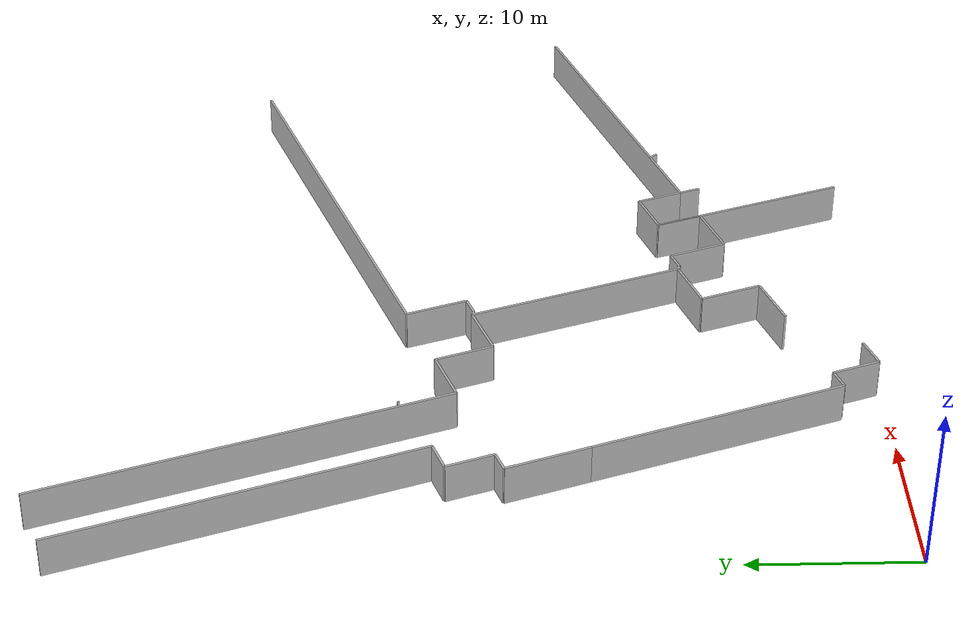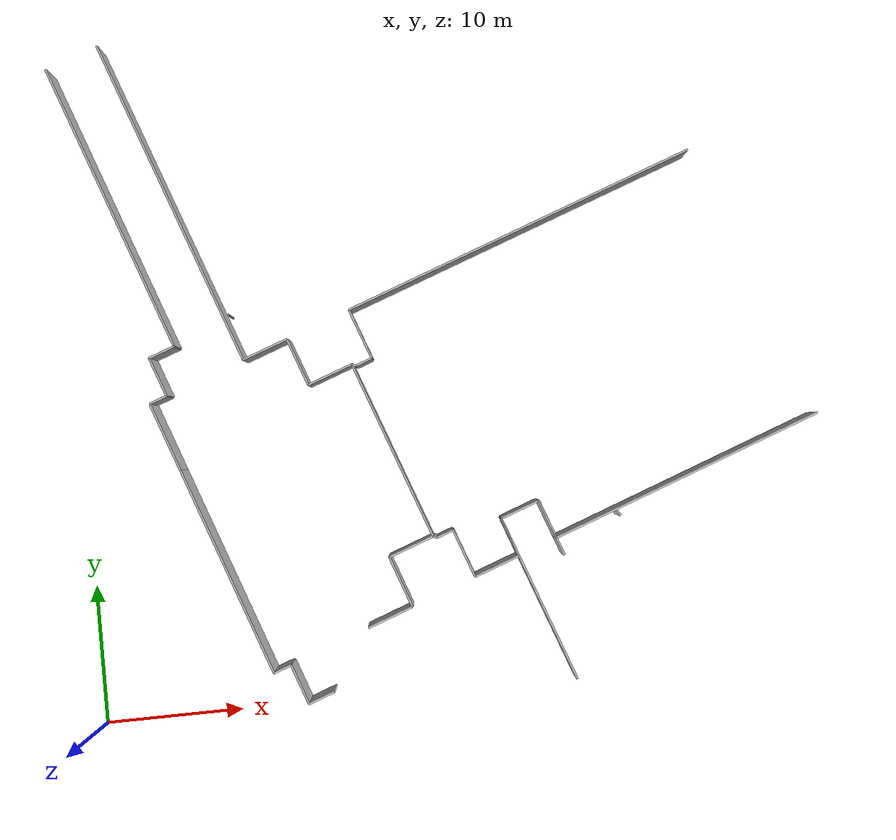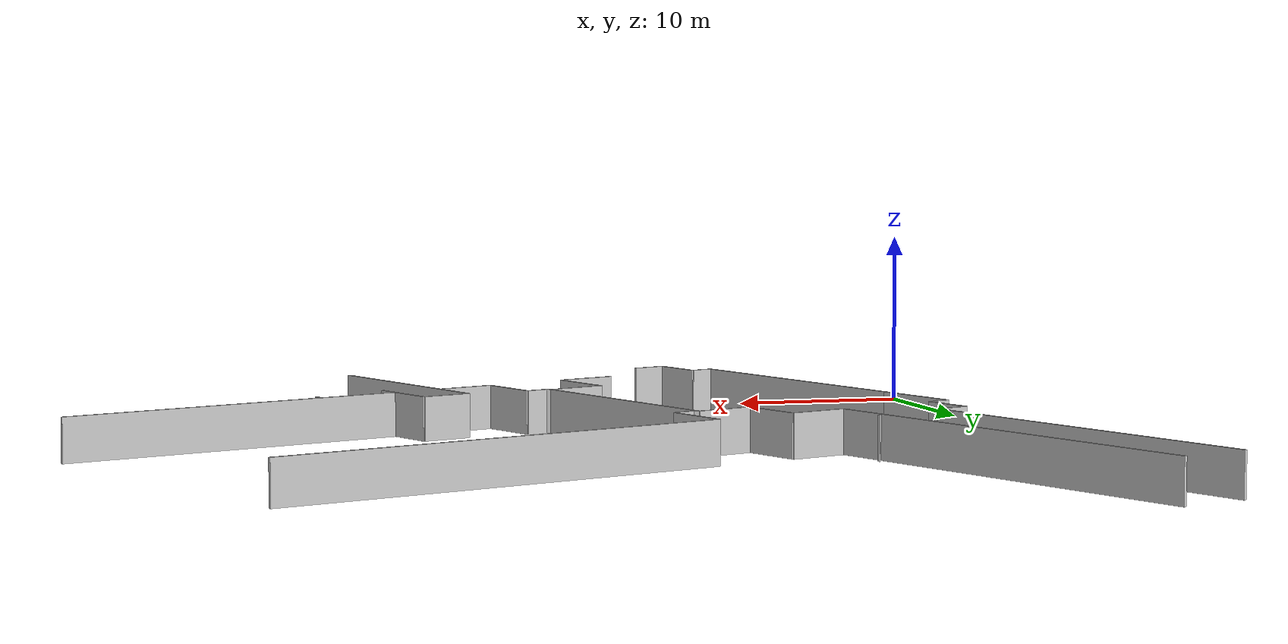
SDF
<?xml version="1.0" ?>
<sdf version="1.6">
  <model name="sps_4532">
    <pose frame="">0 0 0 0 -0 0</pose>
    <static>1</static>
    <self_collide>0</self_collide>
    <allow_auto_disable>0</allow_auto_disable>
    <link name="Wall75">
      <kinematic>0</kinematic>
      <gravity>1</gravity>
      <self_collide>0</self_collide>
      <collision name="collision">
        <geometry>
          <box>
            <size>3.50995 0.15 2.5</size>
          </box>
        </geometry>
        <pose frame="">0 0 0 0 -0 0</pose>
      </collision>
      <visual name="visual">
        <geometry>
          <box>
            <size>3.50995 0.15 2.5</size>
          </box>
        </geometry>
        <pose frame="">0 0 0 0 -0 0</pose>
        <cast_shadows>1</cast_shadows>
        <transparency>0.0</transparency>
      </visual>
      <pose frame="">14.3138 26.0264 1.25 0 -0 0.344249</pose>
    </link>
    <link name="Wall76">
      <kinematic>0</kinematic>
      <gravity>1</gravity>
      <self_collide>0</self_collide>
      <collision name="collision">
        <geometry>
          <box>
            <size>3.50986 0.15 2.5</size>
          </box>
        </geometry>
        <pose frame="">0 0 0 0 -0 0</pose>
      </collision>
      <visual name="visual">
        <geometry>
          <box>
            <size>3.50986 0.15 2.5</size>
          </box>
        </geometry>
        <pose frame="">0 0 0 0 -0 0</pose>
        <cast_shadows>1</cast_shadows>
        <transparency>0.0</transparency>
      </visual>
      <pose frame="">21.5362 5.88191 1.25 0 0 -2.79726</pose>
    </link>
    <link name="Wall77">
      <kinematic>0</kinematic>
      <gravity>1</gravity>
      <self_collide>0</self_collide>
      <collision name="collision">
        <geometry>
          <box>
            <size>3.92009 0.15 2.5</size>
          </box>
        </geometry>
        <pose frame="">0 0 0 0 -0 0</pose>
      </collision>
      <visual name="visual">
        <geometry>
          <box>
            <size>3.92009 0.15 2.5</size>
          </box>
        </geometry>
        <pose frame="">0 0 0 0 -0 0</pose>
        <cast_shadows>1</cast_shadows>
        <transparency>0.0</transparency>
      </visual>
      <pose frame="">22.5265 8.31932 1.25 0 0 -1.22648</pose>
    </link>
    <link name="Wall78">
      <kinematic>0</kinematic>
      <gravity>1</gravity>
      <self_collide>0</self_collide>
      <collision name="collision">
        <geometry>
          <box>
            <size>4.30404 0.15 2.5</size>
          </box>
        </geometry>
        <pose frame="">0 0 0 0 -0 0</pose>
      </collision>
      <visual name="visual">
        <geometry>
          <box>
            <size>4.30404 0.15 2.5</size>
          </box>
        </geometry>
        <pose frame="">0 0 0 0 -0 0</pose>
        <cast_shadows>1</cast_shadows>
        <transparency>0.0</transparency>
      </visual>
      <pose frame="">33.7432 11.1054 1.25 0 0 -1.22655</pose>
    </link>
    <link name="Wall147">
      <kinematic>0</kinematic>
      <gravity>1</gravity>
      <self_collide>0</self_collide>
      <collision name="collision">
        <geometry>
          <box>
            <size>16.0744 0.15 2.5</size>
          </box>
        </geometry>
        <pose frame="">0 0 0 0 -0 0</pose>
      </collision>
      <visual name="visual">
        <geometry>
          <box>
            <size>16.0744 0.15 2.5</size>
          </box>
        </geometry>
        <pose frame="">0 0 0 0 -0 0</pose>
        <cast_shadows>1</cast_shadows>
        <transparency>0.0</transparency>
      </visual>
      <pose frame="">10.1209 10.3274 1.25 0 -0 1.91503</pose>
    </link>
    <link name="Wall148">
      <kinematic>0</kinematic>
      <gravity>1</gravity>
      <self_collide>0</self_collide>
      <collision name="collision">
        <geometry>
          <box>
            <size>5.32562 0.15 2.5</size>
          </box>
        </geometry>
        <pose frame="">0 0 0 0 -0 0</pose>
      </collision>
      <visual name="visual">
        <geometry>
          <box>
            <size>5.32562 0.15 2.5</size>
          </box>
        </geometry>
        <pose frame="">0 0 0 0 -0 0</pose>
        <cast_shadows>1</cast_shadows>
        <transparency>0.0</transparency>
      </visual>
      <pose frame="">6.50987 20.3997 1.25 0 -0 1.91503</pose>
    </link>
    <link name="Wall149">
      <kinematic>0</kinematic>
      <gravity>1</gravity>
      <self_collide>0</self_collide>
      <collision name="collision">
        <geometry>
          <box>
            <size>3.69961 0.15 2.5</size>
          </box>
        </geometry>
        <pose frame="">0 0 0 0 -0 0</pose>
      </collision>
      <visual name="visual">
        <geometry>
          <box>
            <size>3.69961 0.15 2.5</size>
          </box>
        </geometry>
        <pose frame="">0 0 0 0 -0 0</pose>
        <cast_shadows>1</cast_shadows>
        <transparency>0.0</transparency>
      </visual>
      <pose frame="">16.5901 24.8774 1.25 0 0 -1.22654</pose>
    </link>
    <link name="Wall150">
      <kinematic>0</kinematic>
      <gravity>1</gravity>
      <self_collide>0</self_collide>
      <collision name="collision">
        <geometry>
          <box>
            <size>3.50029 0.15 2.5</size>
          </box>
        </geometry>
        <pose frame="">0 0 0 0 -0 0</pose>
      </collision>
      <visual name="visual">
        <geometry>
          <box>
            <size>3.50029 0.15 2.5</size>
          </box>
        </geometry>
        <pose frame="">0 0 0 0 -0 0</pose>
        <cast_shadows>1</cast_shadows>
        <transparency>0.0</transparency>
      </visual>
      <pose frame="">18.862 23.7266 1.25 0 -0 0.344145</pose>
    </link>
    <link name="Wall151">
      <kinematic>0</kinematic>
      <gravity>1</gravity>
      <self_collide>0</self_collide>
      <collision name="collision">
        <geometry>
          <box>
            <size>0.310551 0.15 2.5</size>
          </box>
        </geometry>
        <pose frame="">0 0 0 0 -0 0</pose>
      </collision>
      <visual name="visual">
        <geometry>
          <box>
            <size>0.310551 0.15 2.5</size>
          </box>
        </geometry>
        <pose frame="">0 0 0 0 -0 0</pose>
        <cast_shadows>1</cast_shadows>
        <transparency>0.0</transparency>
      </visual>
      <pose frame="">25.2999 11.2784 1.25 0 -0 2.70185</pose>
    </link>
    <link name="Wall152">
      <kinematic>0</kinematic>
      <gravity>1</gravity>
      <self_collide>0</self_collide>
      <collision name="collision">
        <geometry>
          <box>
            <size>3.70068 0.15 2.5</size>
          </box>
        </geometry>
        <pose frame="">0 0 0 0 -0 0</pose>
      </collision>
      <visual name="visual">
        <geometry>
          <box>
            <size>3.70068 0.15 2.5</size>
          </box>
        </geometry>
        <pose frame="">0 0 0 0 -0 0</pose>
        <cast_shadows>1</cast_shadows>
        <transparency>0.0</transparency>
      </visual>
      <pose frame="">27.27 9.90242 1.25 0 -0 1.91517</pose>
    </link>
    <link name="Wall257">
      <kinematic>0</kinematic>
      <gravity>1</gravity>
      <self_collide>0</self_collide>
      <collision name="collision">
        <geometry>
          <box>
            <size>1.34945 0.15 2.5</size>
          </box>
        </geometry>
        <pose frame="">0 0 0 0 -0 0</pose>
      </collision>
      <visual name="visual">
        <geometry>
          <box>
            <size>1.34945 0.15 2.5</size>
          </box>
        </geometry>
        <pose frame="">0 0 0 0 -0 0</pose>
        <cast_shadows>1</cast_shadows>
        <transparency>0.0</transparency>
      </visual>
      <pose frame="">6.24633 23.1341 1.25 0 -0 0.344408</pose>
    </link>
    <link name="Wall258">
      <kinematic>0</kinematic>
      <gravity>1</gravity>
      <self_collide>0</self_collide>
      <collision name="collision">
        <geometry>
          <box>
            <size>1.34956 0.15 2.5</size>
          </box>
        </geometry>
        <pose frame="">0 0 0 0 -0 0</pose>
      </collision>
      <visual name="visual">
        <geometry>
          <box>
            <size>1.34956 0.15 2.5</size>
          </box>
        </geometry>
        <pose frame="">0 0 0 0 -0 0</pose>
        <cast_shadows>1</cast_shadows>
        <transparency>0.0</transparency>
      </visual>
      <pose frame="">13.4685 2.98939 1.25 0 0 -2.79736</pose>
    </link>
    <link name="Wall319">
      <kinematic>0</kinematic>
      <gravity>1</gravity>
      <self_collide>0</self_collide>
      <collision name="collision">
        <geometry>
          <box>
            <size>0.311482 0.15 2.5</size>
          </box>
        </geometry>
        <pose frame="">0 0 0 0 -0 0</pose>
      </collision>
      <visual name="visual">
        <geometry>
          <box>
            <size>0.311482 0.15 2.5</size>
          </box>
        </geometry>
        <pose frame="">0 0 0 0 -0 0</pose>
        <cast_shadows>1</cast_shadows>
        <transparency>0.0</transparency>
      </visual>
      <pose frame="">20.6502 24.2503 1.25 0 0 -0.443316</pose>
    </link>
    <link name="Wall320">
      <kinematic>0</kinematic>
      <gravity>1</gravity>
      <self_collide>0</self_collide>
      <collision name="collision">
        <geometry>
          <box>
            <size>1.27988 0.15 2.5</size>
          </box>
        </geometry>
        <pose frame="">0 0 0 0 -0 0</pose>
      </collision>
      <visual name="visual">
        <geometry>
          <box>
            <size>1.27988 0.15 2.5</size>
          </box>
        </geometry>
        <pose frame="">0 0 0 0 -0 0</pose>
        <cast_shadows>1</cast_shadows>
        <transparency>0.0</transparency>
      </visual>
      <pose frame="">26.0429 11.4282 1.25 0 0 -2.79745</pose>
    </link>
    <link name="Wall384">
      <kinematic>0</kinematic>
      <gravity>1</gravity>
      <self_collide>0</self_collide>
      <collision name="collision">
        <geometry>
          <box>
            <size>25.7532 0.15 2.5</size>
          </box>
        </geometry>
        <pose frame="">0 0 0 0 -0 0</pose>
      </collision>
      <visual name="visual">
        <geometry>
          <box>
            <size>25.7532 0.15 2.5</size>
          </box>
        </geometry>
        <pose frame="">0 0 0 0 -0 0</pose>
        <cast_shadows>1</cast_shadows>
        <transparency>0.0</transparency>
      </visual>
      <pose frame="">8.31744 37.5557 1.25 0 -0 1.91494</pose>
    </link>
    <link name="Wall385">
      <kinematic>0</kinematic>
      <gravity>1</gravity>
      <self_collide>0</self_collide>
      <collision name="collision">
        <geometry>
          <box>
            <size>3.05064 0.15 2.5</size>
          </box>
        </geometry>
        <pose frame="">0 0 0 0 -0 0</pose>
      </collision>
      <visual name="visual">
        <geometry>
          <box>
            <size>3.05064 0.15 2.5</size>
          </box>
        </geometry>
        <pose frame="">0 0 0 0 -0 0</pose>
        <cast_shadows>1</cast_shadows>
        <transparency>0.0</transparency>
      </visual>
      <pose frame="">14.6185 1.78129 1.25 0 -0 1.91506</pose>
    </link>
    <link name="Wall481">
      <kinematic>0</kinematic>
      <gravity>1</gravity>
      <self_collide>0</self_collide>
      <collision name="collision">
        <geometry>
          <box>
            <size>0.100527 0.15 2.5</size>
          </box>
        </geometry>
        <pose frame="">0 0 0 0 -0 0</pose>
      </collision>
      <visual name="visual">
        <geometry>
          <box>
            <size>0.100527 0.15 2.5</size>
          </box>
        </geometry>
        <pose frame="">0 0 0 0 -0 0</pose>
        <cast_shadows>1</cast_shadows>
        <transparency>0.0</transparency>
      </visual>
      <pose frame="">11.8742 28.8163 1.25 0 0 -2.79661</pose>
    </link>
    <link name="Wall482">
      <kinematic>0</kinematic>
      <gravity>1</gravity>
      <self_collide>0</self_collide>
      <collision name="collision">
        <geometry>
          <box>
            <size>3.49962 0.15 2.5</size>
          </box>
        </geometry>
        <pose frame="">0 0 0 0 -0 0</pose>
      </collision>
      <visual name="visual">
        <geometry>
          <box>
            <size>3.49962 0.15 2.5</size>
          </box>
        </geometry>
        <pose frame="">0 0 0 0 -0 0</pose>
        <cast_shadows>1</cast_shadows>
        <transparency>0.0</transparency>
      </visual>
      <pose frame="">23.5121 10.7544 1.25 0 0 -2.79762</pose>
    </link>
    <link name="Wall483">
      <kinematic>0</kinematic>
      <gravity>1</gravity>
      <self_collide>0</self_collide>
      <collision name="collision">
        <geometry>
          <box>
            <size>0.572816 0.15 2.5</size>
          </box>
        </geometry>
        <pose frame="">0 0 0 0 -0 0</pose>
      </collision>
      <visual name="visual">
        <geometry>
          <box>
            <size>0.572816 0.15 2.5</size>
          </box>
        </geometry>
        <pose frame="">0 0 0 0 -0 0</pose>
        <cast_shadows>1</cast_shadows>
        <transparency>0.0</transparency>
      </visual>
      <pose frame="">38.6548 11.7267 1.25 0 0 -0.940551</pose>
    </link>
    <link name="Wall576">
      <kinematic>0</kinematic>
      <gravity>1</gravity>
      <self_collide>0</self_collide>
      <collision name="collision">
        <geometry>
          <box>
            <size>22.7026 0.15 2.5</size>
          </box>
        </geometry>
        <pose frame="">0 0 0 0 -0 0</pose>
      </collision>
      <visual name="visual">
        <geometry>
          <box>
            <size>22.7026 0.15 2.5</size>
          </box>
        </geometry>
        <pose frame="">0 0 0 0 -0 0</pose>
        <cast_shadows>1</cast_shadows>
        <transparency>0.0</transparency>
      </visual>
      <pose frame="">3.90527 37.5939 1.25 0 0 -1.22667</pose>
    </link>
    <link name="Wall577">
      <kinematic>0</kinematic>
      <gravity>1</gravity>
      <self_collide>0</self_collide>
      <collision name="collision">
        <geometry>
          <box>
            <size>12.6719 0.15 2.5</size>
          </box>
        </geometry>
        <pose frame="">0 0 0 0 -0 0</pose>
      </collision>
      <visual name="visual">
        <geometry>
          <box>
            <size>12.6719 0.15 2.5</size>
          </box>
        </geometry>
        <pose frame="">0 0 0 0 -0 0</pose>
        <cast_shadows>1</cast_shadows>
        <transparency>0.0</transparency>
      </visual>
      <pose frame="">32.3311 6.15446 1.25 0 0 -1.22655</pose>
    </link>
    <link name="Wall653">
      <kinematic>0</kinematic>
      <gravity>1</gravity>
      <self_collide>0</self_collide>
      <collision name="collision">
        <geometry>
          <box>
            <size>3.04972 0.15 2.5</size>
          </box>
        </geometry>
        <pose frame="">0 0 0 0 -0 0</pose>
      </collision>
      <visual name="visual">
        <geometry>
          <box>
            <size>3.04972 0.15 2.5</size>
          </box>
        </geometry>
        <pose frame="">0 0 0 0 -0 0</pose>
        <cast_shadows>1</cast_shadows>
        <transparency>0.0</transparency>
      </visual>
      <pose frame="">6.36706 24.7974 1.25 0 -0 1.91487</pose>
    </link>
    <link name="Wall654">
      <kinematic>0</kinematic>
      <gravity>1</gravity>
      <self_collide>0</self_collide>
      <collision name="collision">
        <geometry>
          <box>
            <size>1.99966 0.15 2.5</size>
          </box>
        </geometry>
        <pose frame="">0 0 0 0 -0 0</pose>
      </collision>
      <visual name="visual">
        <geometry>
          <box>
            <size>1.99966 0.15 2.5</size>
          </box>
        </geometry>
        <pose frame="">0 0 0 0 -0 0</pose>
        <cast_shadows>1</cast_shadows>
        <transparency>0.0</transparency>
      </visual>
      <pose frame="">6.79378 26.5705 1.25 0 -0 0.344445</pose>
    </link>
    <link name="Wall655">
      <kinematic>0</kinematic>
      <gravity>1</gravity>
      <self_collide>0</self_collide>
      <collision name="collision">
        <geometry>
          <box>
            <size>1.99972 0.15 2.5</size>
          </box>
        </geometry>
        <pose frame="">0 0 0 0 -0 0</pose>
      </collision>
      <visual name="visual">
        <geometry>
          <box>
            <size>1.99972 0.15 2.5</size>
          </box>
        </geometry>
        <pose frame="">0 0 0 0 -0 0</pose>
        <cast_shadows>1</cast_shadows>
        <transparency>0.0</transparency>
      </visual>
      <pose frame="">16.0744 0.683181 1.25 0 0 -2.79706</pose>
    </link>
    <link name="Wall2647">
      <kinematic>0</kinematic>
      <gravity>1</gravity>
      <self_collide>0</self_collide>
      <collision name="collision">
        <geometry>
          <box>
            <size>13.7808 0.15 2.5</size>
          </box>
        </geometry>
        <pose frame="">0 0 0 0 -0 0</pose>
      </collision>
      <visual name="visual">
        <geometry>
          <box>
            <size>13.7808 0.15 2.5</size>
          </box>
        </geometry>
        <pose frame="">0 0 0 0 -0 0</pose>
        <cast_shadows>1</cast_shadows>
        <transparency>0.0</transparency>
      </visual>
      <pose frame="">22.8345 17.8308 1.25 0 -0 1.91497</pose>
    </link>
    <link name="Wall2648">
      <kinematic>0</kinematic>
      <gravity>1</gravity>
      <self_collide>0</self_collide>
      <collision name="collision">
        <geometry>
          <box>
            <size>0.311482 0.15 2.5</size>
          </box>
        </geometry>
        <pose frame="">0 0 0 0 -0 0</pose>
      </collision>
      <visual name="visual">
        <geometry>
          <box>
            <size>0.311482 0.15 2.5</size>
          </box>
        </geometry>
        <pose frame="">0 0 0 0 -0 0</pose>
        <cast_shadows>1</cast_shadows>
        <transparency>0.0</transparency>
      </visual>
      <pose frame="">20.6502 24.2503 1.25 0 0 -0.443316</pose>
    </link>
    <link name="Wall2649">
      <kinematic>0</kinematic>
      <gravity>1</gravity>
      <self_collide>0</self_collide>
      <collision name="collision">
        <geometry>
          <box>
            <size>1.27928 0.15 2.5</size>
          </box>
        </geometry>
        <pose frame="">0 0 0 0 -0 0</pose>
      </collision>
      <visual name="visual">
        <geometry>
          <box>
            <size>1.27928 0.15 2.5</size>
          </box>
        </geometry>
        <pose frame="">0 0 0 0 -0 0</pose>
        <cast_shadows>1</cast_shadows>
        <transparency>0.0</transparency>
      </visual>
      <pose frame="">21.3928 24.3997 1.25 0 -0 0.344821</pose>
    </link>
    <link name="Wall2650">
      <kinematic>0</kinematic>
      <gravity>1</gravity>
      <self_collide>0</self_collide>
      <collision name="collision">
        <geometry>
          <box>
            <size>3.91934 0.15 2.5</size>
          </box>
        </geometry>
        <pose frame="">0 0 0 0 -0 0</pose>
      </collision>
      <visual name="visual">
        <geometry>
          <box>
            <size>3.91934 0.15 2.5</size>
          </box>
        </geometry>
        <pose frame="">0 0 0 0 -0 0</pose>
        <cast_shadows>1</cast_shadows>
        <transparency>0.0</transparency>
      </visual>
      <pose frame="">21.3337 26.4607 1.25 0 -0 1.9149</pose>
    </link>
    <link name="Wall2651">
      <kinematic>0</kinematic>
      <gravity>1</gravity>
      <self_collide>0</self_collide>
      <collision name="collision">
        <geometry>
          <box>
            <size>27.5504 0.15 2.5</size>
          </box>
        </geometry>
        <pose frame="">0 0 0 0 -0 0</pose>
      </collision>
      <visual name="visual">
        <geometry>
          <box>
            <size>27.5504 0.15 2.5</size>
          </box>
        </geometry>
        <pose frame="">0 0 0 0 -0 0</pose>
        <cast_shadows>1</cast_shadows>
        <transparency>0.0</transparency>
      </visual>
      <pose frame="">33.6395 32.9547 1.25 0 -0 0.344265</pose>
    </link>
    <link name="Wall2653">
      <kinematic>0</kinematic>
      <gravity>1</gravity>
      <self_collide>0</self_collide>
      <collision name="collision">
        <geometry>
          <box>
            <size>21.0515 0.15 2.5</size>
          </box>
        </geometry>
        <pose frame="">0 0 0 0 -0 0</pose>
      </collision>
      <visual name="visual">
        <geometry>
          <box>
            <size>21.0515 0.15 2.5</size>
          </box>
        </geometry>
        <pose frame="">0 0 0 0 -0 0</pose>
        <cast_shadows>1</cast_shadows>
        <transparency>0.0</transparency>
      </visual>
      <pose frame="">43.9206 13.9067 1.25 0 0 -2.79732</pose>
    </link>
    <link name="Wall2654">
      <kinematic>0</kinematic>
      <gravity>1</gravity>
      <self_collide>0</self_collide>
      <collision name="collision">
        <geometry>
          <box>
            <size>2.95011 0.15 2.5</size>
          </box>
        </geometry>
        <pose frame="">0 0 0 0 -0 0</pose>
      </collision>
      <visual name="visual">
        <geometry>
          <box>
            <size>2.95011 0.15 2.5</size>
          </box>
        </geometry>
        <pose frame="">0 0 0 0 -0 0</pose>
        <cast_shadows>1</cast_shadows>
        <transparency>0.0</transparency>
      </visual>
      <pose frame="">33.5147 11.7426 1.25 0 -0 1.91504</pose>
    </link>
    <link name="Wall2655">
      <kinematic>0</kinematic>
      <gravity>1</gravity>
      <self_collide>0</self_collide>
      <collision name="collision">
        <geometry>
          <box>
            <size>3.00004 0.15 2.5</size>
          </box>
        </geometry>
        <pose frame="">0 0 0 0 -0 0</pose>
      </collision>
      <visual name="visual">
        <geometry>
          <box>
            <size>3.00004 0.15 2.5</size>
          </box>
        </geometry>
        <pose frame="">0 0 0 0 -0 0</pose>
        <cast_shadows>1</cast_shadows>
        <transparency>0.0</transparency>
      </visual>
      <pose frame="">31.6049 12.6249 1.25 0 0 -2.79735</pose>
    </link>
    <link name="Wall2656">
      <kinematic>0</kinematic>
      <gravity>1</gravity>
      <self_collide>0</self_collide>
      <collision name="collision">
        <geometry>
          <box>
            <size>2.95009 0.15 2.5</size>
          </box>
        </geometry>
        <pose frame="">0 0 0 0 -0 0</pose>
      </collision>
      <visual name="visual">
        <geometry>
          <box>
            <size>2.95009 0.15 2.5</size>
          </box>
        </geometry>
        <pose frame="">0 0 0 0 -0 0</pose>
        <cast_shadows>1</cast_shadows>
        <transparency>0.0</transparency>
      </visual>
      <pose frame="">30.6836 10.7277 1.25 0 0 -1.23158</pose>
    </link>
    <link name="Wall2657">
      <kinematic>0</kinematic>
      <gravity>1</gravity>
      <self_collide>0</self_collide>
      <collision name="collision">
        <geometry>
          <box>
            <size>3.48423 0.15 2.5</size>
          </box>
        </geometry>
        <pose frame="">0 0 0 0 -0 0</pose>
      </collision>
      <visual name="visual">
        <geometry>
          <box>
            <size>3.48423 0.15 2.5</size>
          </box>
        </geometry>
        <pose frame="">0 0 0 0 -0 0</pose>
        <cast_shadows>1</cast_shadows>
        <transparency>0.0</transparency>
      </visual>
      <pose frame="">29.5346 8.7487 1.25 0 0 -2.79732</pose>
    </link>
    <link name="Wall2658">
      <kinematic>0</kinematic>
      <gravity>1</gravity>
      <self_collide>0</self_collide>
      <collision name="collision">
        <geometry>
          <box>
            <size>3.70068 0.15 2.5</size>
          </box>
        </geometry>
        <pose frame="">0 0 0 0 -0 0</pose>
      </collision>
      <visual name="visual">
        <geometry>
          <box>
            <size>3.70068 0.15 2.5</size>
          </box>
        </geometry>
        <pose frame="">0 0 0 0 -0 0</pose>
        <cast_shadows>1</cast_shadows>
        <transparency>0.0</transparency>
      </visual>
      <pose frame="">27.27 9.90242 1.25 0 -0 1.91517</pose>
    </link>
    <link name="Wall2659">
      <kinematic>0</kinematic>
      <gravity>1</gravity>
      <self_collide>0</self_collide>
      <collision name="collision">
        <geometry>
          <box>
            <size>1.27988 0.15 2.5</size>
          </box>
        </geometry>
        <pose frame="">0 0 0 0 -0 0</pose>
      </collision>
      <visual name="visual">
        <geometry>
          <box>
            <size>1.27988 0.15 2.5</size>
          </box>
        </geometry>
        <pose frame="">0 0 0 0 -0 0</pose>
        <cast_shadows>1</cast_shadows>
        <transparency>0.0</transparency>
      </visual>
      <pose frame="">26.0429 11.4282 1.25 0 0 -2.79745</pose>
    </link>
  </model>
</sdf>
